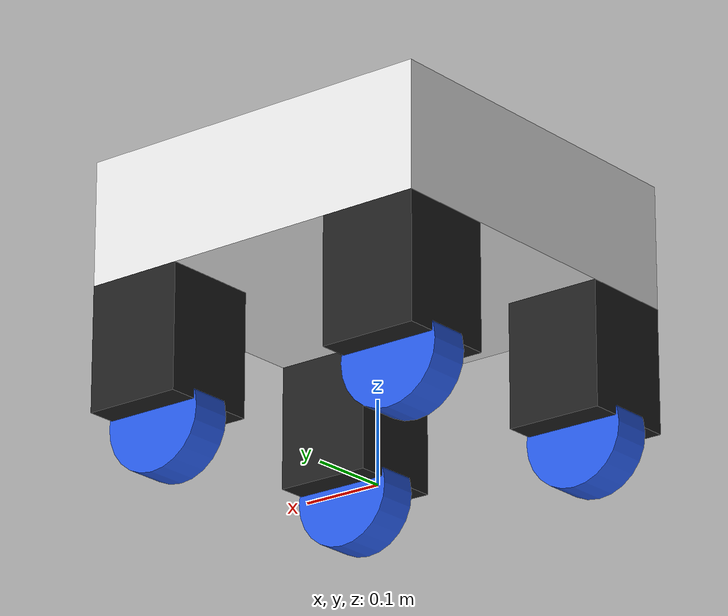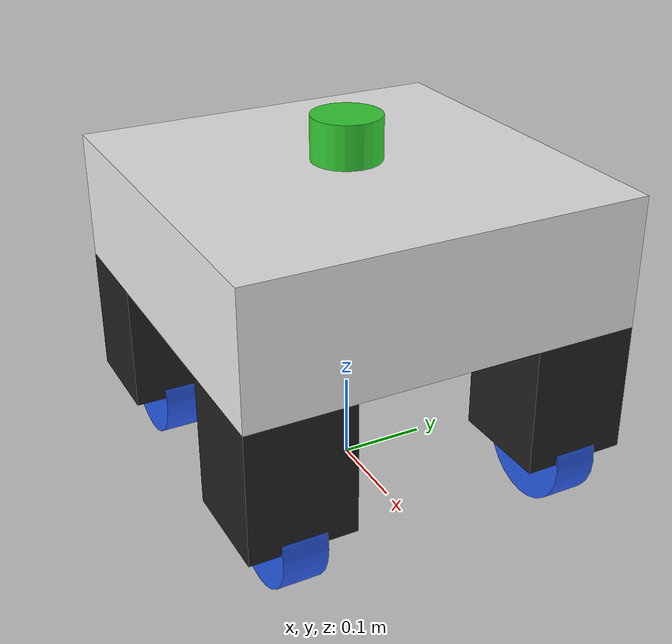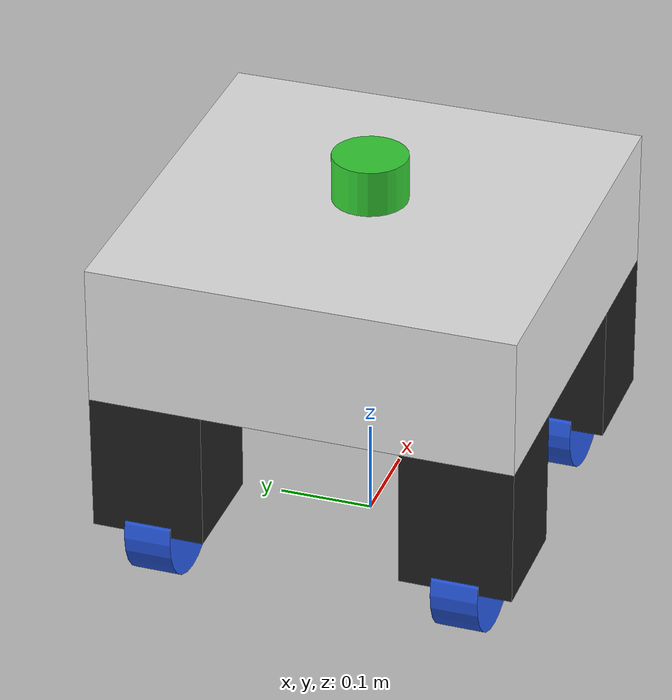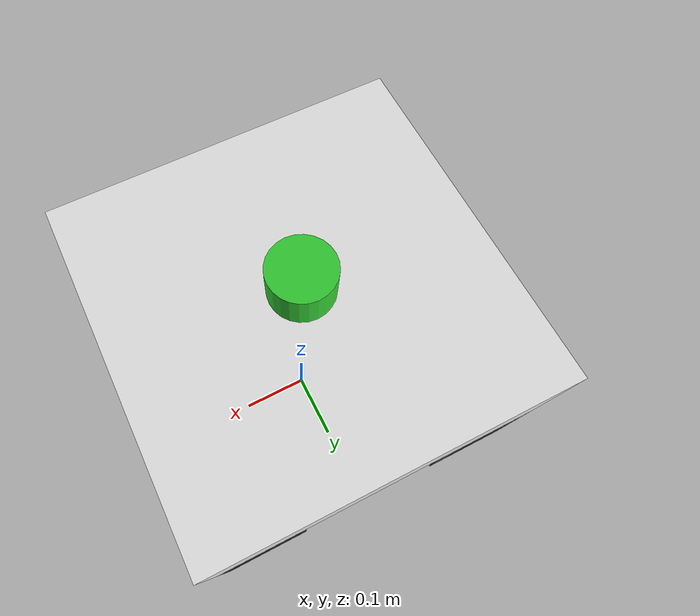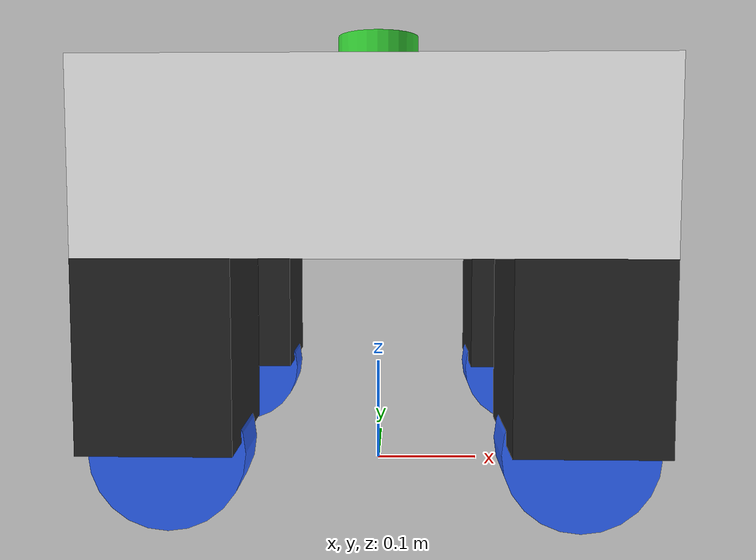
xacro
<?xml version="1.0"?>
<!-- Master file: assembles the whole robot by including the modules. -->
<robot xmlns:xacro="http://www.ros.org/wiki/xacro" name="swerve_bot">

  <!-- macro libraries first (define before use) -->
  <xacro:include filename="inertial_macros.xacro"/>
  <xacro:include filename="swerve_module.xacro"/>

  <!-- robot body + wheels + sensor + controllers -->
  <xacro:include filename="robot_core.xacro"/>
  <xacro:include filename="lidar.xacro"/>
  <xacro:include filename="gazebo_control.xacro"/>

</robot>

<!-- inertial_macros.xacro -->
<robot xmlns:xacro="http://www.ros.org/wiki/xacro">

  <!-- Reusable inertia macros (mass properties computed from geometry). -->
  <!-- Formulas: https://en.wikipedia.org/wiki/List_of_moments_of_inertia -->

  <xacro:macro name="inertial_box" params="mass x y z *origin">
    <inertial>
      <xacro:insert_block name="origin"/>
      <mass value="${mass}"/>
      <inertia ixx="${(1/12)*mass*(y*y+z*z)}" ixy="0.0" ixz="0.0"
               iyy="${(1/12)*mass*(x*x+z*z)}" iyz="0.0"
               izz="${(1/12)*mass*(x*x+y*y)}"/>
    </inertial>
  </xacro:macro>

  <xacro:macro name="inertial_cylinder" params="mass radius length *origin">
    <inertial>
      <xacro:insert_block name="origin"/>
      <mass value="${mass}"/>
      <inertia ixx="${(1/12)*mass*(3*radius*radius+length*length)}" ixy="0.0" ixz="0.0"
               iyy="${(1/12)*mass*(3*radius*radius+length*length)}" iyz="0.0"
               izz="${(1/2)*mass*(radius*radius)}"/>
    </inertial>
  </xacro:macro>

  <xacro:macro name="inertial_sphere" params="mass radius *origin">
    <inertial>
      <xacro:insert_block name="origin"/>
      <mass value="${mass}"/>
      <inertia ixx="${(2/5)*mass*(radius*radius)}" ixy="0.0" ixz="0.0"
               iyy="${(2/5)*mass*(radius*radius)}" iyz="0.0"
               izz="${(2/5)*mass*(radius*radius)}"/>
    </inertial>
  </xacro:macro>

</robot>

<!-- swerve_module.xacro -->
<robot xmlns:xacro="http://www.ros.org/wiki/xacro">

  <!--  ONE swerve module = a steering box (rotates about Z) carrying a  -->
  <!--  drive wheel. Instantiated 4x (one per corner) at the bottom.     -->
  <!--    prefix : fl / fr / bl / br  (must match swerve_controller.py)  -->
  <!--    x, y   : module position relative to base_link center [m]      -->
  <xacro:macro name="swerve_module" params="prefix x y">

    <!-- (1) STEER joint: revolute about vertical axis -> chooses wheel heading -->
    <joint name="${prefix}_steer_joint" type="revolute">
      <parent link="base_link"/>
      <child link="${prefix}_steer_link"/>
      <origin xyz="${x} ${y} -0.15" rpy="0 0 0"/>
      <axis xyz="0 0 1"/>
      <limit lower="-3.15" upper="3.15" effort="50" velocity="20"/>
      <dynamics damping="0.2" friction="0.1"/>
    </joint>

    <!-- steering module body: box 0.12 x 0.12 x 0.15 m -->
    <link name="${prefix}_steer_link">
      <visual>
        <geometry><box size="0.12 0.12 0.15"/></geometry>
        <material name="dark"/>
      </visual>
      <collision>
        <geometry><box size="0.12 0.12 0.15"/></geometry>
      </collision>
      <xacro:inertial_box mass="0.4" x="0.12" y="0.12" z="0.15">
        <origin xyz="0 0 0" rpy="0 0 0"/>
      </xacro:inertial_box>
    </link>

    <!-- (2) DRIVE joint: continuous spin of the wheel -->
    <joint name="${prefix}_wheel_joint" type="continuous">
      <parent link="${prefix}_steer_link"/>
      <child link="${prefix}_wheel_link"/>
      <origin xyz="0 0 -0.0835" rpy="${pi/2} 0 0"/>
      <axis xyz="0 0 1"/>
      <dynamics damping="0.05"/>
    </joint>

    <!-- wheel: 5" diameter (radius 0.0635 m), 0.05 m wide -->
    <link name="${prefix}_wheel_link">
      <visual>
        <geometry><cylinder radius="0.0635" length="0.05"/></geometry>
        <material name="blue"/>
      </visual>
      <collision>
        <geometry><cylinder radius="0.0635" length="0.05"/></geometry>
      </collision>
      <xacro:inertial_cylinder mass="0.25" radius="0.0635" length="0.05">
        <origin xyz="0 0 0" rpy="0 0 0"/>
      </xacro:inertial_cylinder>
    </link>

    <!-- wheel-ground friction -->
    <gazebo reference="${prefix}_wheel_link">
      <mu1>1.2</mu1>
      <mu2>1.2</mu2>
    </gazebo>

  </xacro:macro>

  <!-- ============ instantiate the 4 corners ============ -->
  <!-- x forward (+), y left (+)  per ROS REP-103 -->
  <xacro:swerve_module prefix="fl" x="0.165"  y="0.165"/>
  <xacro:swerve_module prefix="fr" x="0.165"  y="-0.165"/>
  <xacro:swerve_module prefix="bl" x="-0.165" y="0.165"/>
  <xacro:swerve_module prefix="br" x="-0.165" y="-0.165"/>

</robot>

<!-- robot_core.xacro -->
<robot xmlns:xacro="http://www.ros.org/wiki/xacro">

  <!-- ============ Colors (converted to gz visual materials on spawn) ============ -->
  <material name="white"><color rgba="0.9 0.9 0.9 1"/></material>
  <material name="blue"><color rgba="0.15 0.35 0.9 1"/></material>
  <material name="dark"><color rgba="0.12 0.12 0.12 1"/></material>
  <material name="green"><color rgba="0.2 0.8 0.2 1"/></material>

  <!-- ============ base_footprint: ground-level reference frame ============ -->
  <link name="base_footprint"/>

  <!-- chassis center sits 0.297 m above the ground so the 5" wheels touch z=0 -->
  <joint name="base_joint" type="fixed">
    <parent link="base_footprint"/>
    <child link="base_link"/>
    <origin xyz="0 0 0.297" rpy="0 0 0"/>
  </joint>

  <!-- ============ base_link: chassis box 0.45 x 0.45 x 0.15 m ============ -->
  <link name="base_link">
    <visual>
      <geometry><box size="0.45 0.45 0.15"/></geometry>
      <material name="white"/>
    </visual>
    <collision>
      <geometry><box size="0.45 0.45 0.15"/></geometry>
    </collision>
    <xacro:inertial_box mass="6.0" x="0.45" y="0.45" z="0.15">
      <origin xyz="0 0 0" rpy="0 0 0"/>
    </xacro:inertial_box>
  </link>

</robot>

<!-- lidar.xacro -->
<robot xmlns:xacro="http://www.ros.org/wiki/xacro">

  <!-- 2D LiDAR mounted on top of the chassis -->
  <joint name="lidar_joint" type="fixed">
    <parent link="base_link"/>
    <child link="lidar_link"/>
    <origin xyz="0 0 0.105" rpy="0 0 0"/>
  </joint>

  <link name="lidar_link">
    <visual>
      <geometry><cylinder radius="0.04" length="0.05"/></geometry>
      <material name="green"/>
    </visual>
    <collision>
      <geometry><cylinder radius="0.04" length="0.05"/></geometry>
    </collision>
    <xacro:inertial_cylinder mass="0.1" radius="0.04" length="0.05">
      <origin xyz="0 0 0" rpy="0 0 0"/>
    </xacro:inertial_cylinder>
  </link>

  <!-- gpu_lidar sensor (Gazebo Harmonic). Needs the Sensors system in the world. -->
  <gazebo reference="lidar_link">
    <sensor name="lidar" type="gpu_lidar">
      <topic>scan</topic>
      <update_rate>10</update_rate>
      <always_on>1</always_on>
      <visualize>true</visualize>
      <lidar>
        <scan>
          <horizontal>
            <samples>360</samples>
            <resolution>1</resolution>
            <min_angle>-3.141592</min_angle>
            <max_angle>3.141592</max_angle>
          </horizontal>
        </scan>
        <range>
          <min>0.2</min>
          <max>12.0</max>
          <resolution>0.01</resolution>
        </range>
      </lidar>
      <gz_frame_id>lidar_link</gz_frame_id>
    </sensor>
  </gazebo>

</robot>
